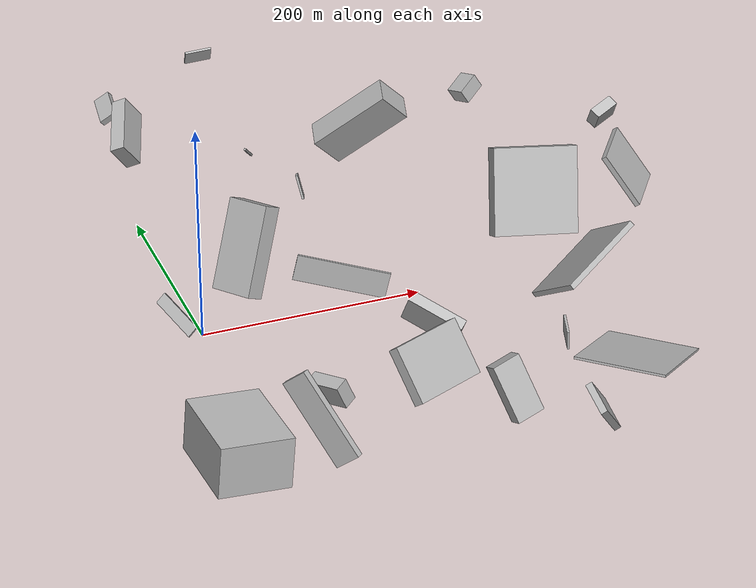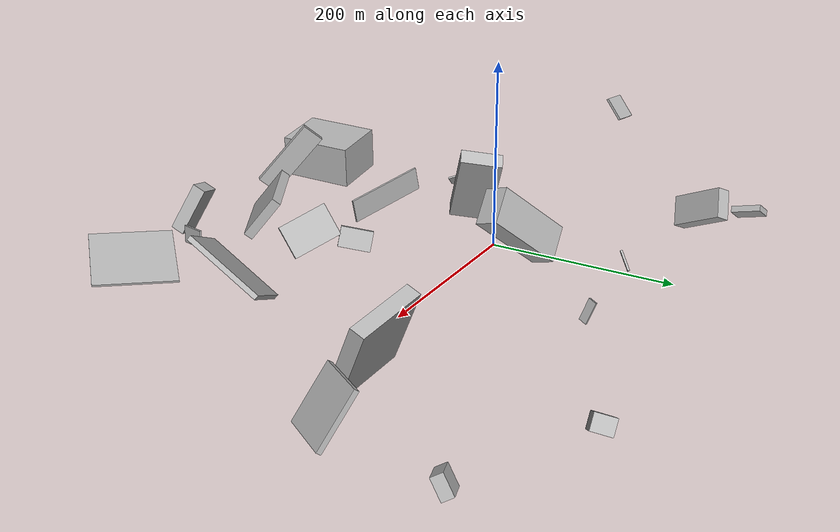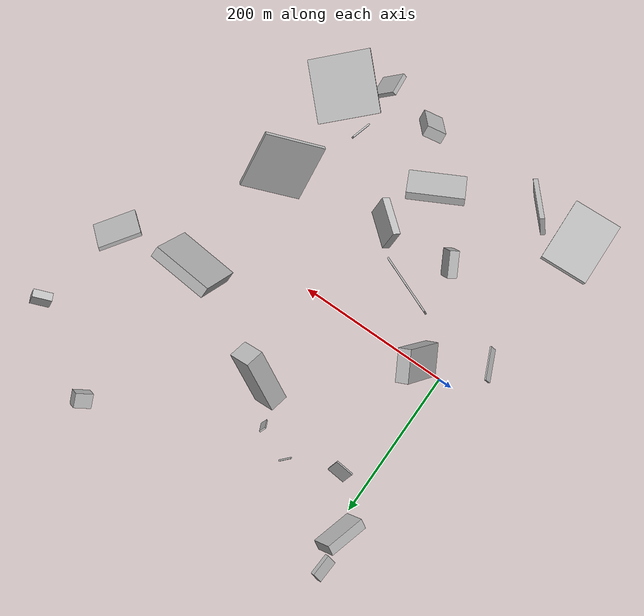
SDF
<sdf version="1.6">
 <world name="default">
  <scene>
   <sky><clouds><speed>12</speed></clouds></sky>
   <ambient>0.4 0.4 0.4 1</ambient>
   <background>0.7 0.7 0.7 1</background>
   <shadows>1</shadows>
  </scene>
  <gravity>0 0 -9.8066</gravity>
  <magnetic_field>6e-06 2.3e-05 -4.2e-05</magnetic_field>
  <physics default="0" name="default_physics" type="ode">
   <ode>
    <solver>
     <type>quick</type>
     <iters>10</iters>
     <sor>1.0</sor>
     <use_dynamic_moi_rescaling>0</use_dynamic_moi_rescaling>
    </solver>
    <constraints>
     <cfm>0</cfm>
     <erp>0.2</erp>
     <contact_max_correcting_vel>100</contact_max_correcting_vel>
     <contact_surface_layer>0.001</contact_surface_layer>
    </constraints>
   </ode>
   <max_step_size>0.004</max_step_size>
   <real_time_factor>1</real_time_factor>
   <real_time_update_rate>250</real_time_update_rate>
  </physics>
  <light name="sun" type="directional">
   <pose>0 0 10 0 0 0</pose>
   <diffuse>0.8 0.8 0.8 1</diffuse>
   <specular>0.2 0.2 0.2 1</specular>
   <attenuation>
    <range>1000</range>
    <constant>0.9</constant>
    <linear>0.01</linear>
    <quadratic>0.001</quadratic>
   </attenuation>
   <direction>-0.5 0.1 -0.9</direction>
  </light>
  <model name="building_1">
   <static>0</static>
   <pose>162.99593049644028 -124.27931186532278 48.80802444539094 -1.0984901950874413 0.40016499125165994 -0.6993017152681614</pose>
   <link name="link">
    <gravity>0</gravity>
    <pose>0 0 5.0 0 0 0</pose>
    <collision name="collision"><geometry><box><size>51 35 10</size></box></geometry></collision>
    <visual name="visual">
     <cast_shadows>0</cast_shadows>
     <geometry><box><size>51 35 10</size></box></geometry>
     <material>
      <script>
       <uri>model://HANNAS_wall/materials/scripts</uri>
       <uri>model://HANNAS_wall/materials/textures</uri>
       <name>vrc/HANNAS_wall</name>
      </script>
     </material>
    </visual>
   </link>
  </model>
  <model name="building_2">
   <static>0</static>
   <pose>104.00570971066661 187.01532598332935 64.12349217143289 -1.8146699430566238 0.8157747024063629 -2.5779243974820227</pose>
   <link name="link">
    <gravity>0</gravity>
    <pose>0 0 1.0 0 0 0</pose>
    <collision name="collision"><geometry><box><size>2 21 2</size></box></geometry></collision>
    <visual name="visual">
     <cast_shadows>0</cast_shadows>
     <geometry><box><size>2 21 2</size></box></geometry>
     <material>
      <script>
       <uri>model://HANNAS_wall/materials/scripts</uri>
       <uri>model://HANNAS_wall/materials/textures</uri>
       <name>vrc/HANNAS_wall</name>
      </script>
     </material>
    </visual>
   </link>
  </model>
  <model name="building_3">
   <static>0</static>
   <pose>67.36303448372925 -128.35348960699457 16.14363830699333 -2.808517901789816 -0.19683969026062162 -1.0601534378026678</pose>
   <link name="link">
    <gravity>0</gravity>
    <pose>0 0 11.0 0 0 0</pose>
    <collision name="collision"><geometry><box><size>35 13 22</size></box></geometry></collision>
    <visual name="visual">
     <cast_shadows>0</cast_shadows>
     <geometry><box><size>35 13 22</size></box></geometry>
     <material>
      <script>
       <uri>model://HANNAS_wall/materials/scripts</uri>
       <uri>model://HANNAS_wall/materials/textures</uri>
       <name>vrc/HANNAS_wall</name>
      </script>
     </material>
    </visual>
   </link>
  </model>
  <model name="building_4">
   <static>0</static>
   <pose>193.99350920317727 -260.26228744437356 34.32530488951527 -0.27017248792645393 0.434059592817933 1.650286607276768</pose>
   <link name="link">
    <gravity>0</gravity>
    <pose>0 0 25.5 0 0 0</pose>
    <collision name="collision"><geometry><box><size>14 25 51</size></box></geometry></collision>
    <visual name="visual">
     <cast_shadows>0</cast_shadows>
     <geometry><box><size>14 25 51</size></box></geometry>
     <material>
      <script>
       <uri>model://HANNAS_wall/materials/scripts</uri>
       <uri>model://HANNAS_wall/materials/textures</uri>
       <name>vrc/HANNAS_wall</name>
      </script>
     </material>
    </visual>
   </link>
  </model>
  <model name="building_5">
   <static>0</static>
   <pose>-8.338563206316696 218.14849788164423 98.22942748126907 2.6610625875440843 -0.4476545114571558 1.2379742506369613</pose>
   <link name="link">
    <gravity>0</gravity>
    <pose>0 0 14.5 0 0 0</pose>
    <collision name="collision"><geometry><box><size>55 14 29</size></box></geometry></collision>
    <visual name="visual">
     <cast_shadows>0</cast_shadows>
     <geometry><box><size>55 14 29</size></box></geometry>
     <material>
      <script>
       <uri>model://HANNAS_wall/materials/scripts</uri>
       <uri>model://HANNAS_wall/materials/textures</uri>
       <name>vrc/HANNAS_wall</name>
      </script>
     </material>
    </visual>
   </link>
  </model>
  <model name="building_6">
   <static>0</static>
   <pose>306.8128664939174 -73.02921990093536 48.179787738711504 -0.6483380074318336 -0.799599427244193 2.4636482451960697</pose>
   <link name="link">
    <gravity>0</gravity>
    <pose>0 0 40.0 0 0 0</pose>
    <collision name="collision"><geometry><box><size>5 80 80</size></box></geometry></collision>
    <visual name="visual">
     <cast_shadows>0</cast_shadows>
     <geometry><box><size>5 80 80</size></box></geometry>
     <material>
      <script>
       <uri>model://HANNAS_wall/materials/scripts</uri>
       <uri>model://HANNAS_wall/materials/textures</uri>
       <name>vrc/HANNAS_wall</name>
      </script>
     </material>
    </visual>
   </link>
  </model>
  <model name="building_7">
   <static>0</static>
   <pose>185.6385628330456 107.14346548154569 111.06078238954456 -1.147870944323106 -0.68353770401961 -0.5122813645487685</pose>
   <link name="link">
    <gravity>0</gravity>
    <pose>0 0 12.0 0 0 0</pose>
    <collision name="collision"><geometry><box><size>80 34 24</size></box></geometry></collision>
    <visual name="visual">
     <cast_shadows>0</cast_shadows>
     <geometry><box><size>80 34 24</size></box></geometry>
     <material>
      <script>
       <uri>model://HANNAS_wall/materials/scripts</uri>
       <uri>model://HANNAS_wall/materials/textures</uri>
       <name>vrc/HANNAS_wall</name>
      </script>
     </material>
    </visual>
   </link>
  </model>
  <model name="building_8">
   <static>0</static>
   <pose>333.42653288165377 61.75706204145057 44.568139040900206 0.2541038439367915 -1.1332465934704619 1.2516623318498625</pose>
   <link name="link">
    <gravity>0</gravity>
    <pose>0 0 7.5 0 0 0</pose>
    <collision name="collision"><geometry><box><size>80 80 15</size></box></geometry></collision>
    <visual name="visual">
     <cast_shadows>0</cast_shadows>
     <geometry><box><size>80 80 15</size></box></geometry>
     <material>
      <script>
       <uri>model://HANNAS_wall/materials/scripts</uri>
       <uri>model://HANNAS_wall/materials/textures</uri>
       <name>vrc/HANNAS_wall</name>
      </script>
     </material>
    </visual>
   </link>
  </model>
  <model name="building_9">
   <static>0</static>
   <pose>-35.903856080899615 -49.59284840066556 57.34418752032484 0.5518796849754295 -0.8433150744029565 -0.03763523875329404</pose>
   <link name="link">
    <gravity>0</gravity>
    <pose>0 0 1.0 0 0 0</pose>
    <collision name="collision"><geometry><box><size>11 44 2</size></box></geometry></collision>
    <visual name="visual">
     <cast_shadows>0</cast_shadows>
     <geometry><box><size>11 44 2</size></box></geometry>
     <material>
      <script>
       <uri>model://HANNAS_wall/materials/scripts</uri>
       <uri>model://HANNAS_wall/materials/textures</uri>
       <name>vrc/HANNAS_wall</name>
      </script>
     </material>
    </visual>
   </link>
  </model>
  <model name="building_10">
   <static>0</static>
   <pose>-12.434469813765284 267.6614812719538 85.78353969204831 0.9258811575640676 -0.2675568153668469 1.4886435769843336</pose>
   <link name="link">
    <gravity>0</gravity>
    <pose>0 0 8.0 0 0 0</pose>
    <collision name="collision"><geometry><box><size>29 6 16</size></box></geometry></collision>
    <visual name="visual">
     <cast_shadows>0</cast_shadows>
     <geometry><box><size>29 6 16</size></box></geometry>
     <material>
      <script>
       <uri>model://HANNAS_wall/materials/scripts</uri>
       <uri>model://HANNAS_wall/materials/textures</uri>
       <name>vrc/HANNAS_wall</name>
      </script>
     </material>
    </visual>
   </link>
  </model>
  <model name="building_11">
   <static>0</static>
   <pose>146.1152976312643 -205.85897138582456 36.81245785799935 0.07707619874986185 0.6601425614137517 2.094515929814166</pose>
   <link name="link">
    <gravity>0</gravity>
    <pose>0 0 25.0 0 0 0</pose>
    <collision name="collision"><geometry><box><size>10 72 50</size></box></geometry></collision>
    <visual name="visual">
     <cast_shadows>0</cast_shadows>
     <geometry><box><size>10 72 50</size></box></geometry>
     <material>
      <script>
       <uri>model://HANNAS_wall/materials/scripts</uri>
       <uri>model://HANNAS_wall/materials/textures</uri>
       <name>vrc/HANNAS_wall</name>
      </script>
     </material>
    </visual>
   </link>
  </model>
  <model name="building_12">
   <static>0</static>
   <pose>303.8937487297731 -230.28277401978175 51.533725984377874 3.088342541937766 0.24143634705019498 0.7557845171297246</pose>
   <link name="link">
    <gravity>0</gravity>
    <pose>0 0 1.0 0 0 0</pose>
    <collision name="collision"><geometry><box><size>80 80 2</size></box></geometry></collision>
    <visual name="visual">
     <cast_shadows>0</cast_shadows>
     <geometry><box><size>80 80 2</size></box></geometry>
     <material>
      <script>
       <uri>model://HANNAS_wall/materials/scripts</uri>
       <uri>model://HANNAS_wall/materials/textures</uri>
       <name>vrc/HANNAS_wall</name>
      </script>
     </material>
    </visual>
   </link>
  </model>
  <model name="building_13">
   <static>0</static>
   <pose>50.89738947310776 157.49242708929256 181.9964008827191 0.7086679709010248 -0.0897074270786901 -0.10773385817431663</pose>
   <link name="link">
    <gravity>0</gravity>
    <pose>0 0 11.0 0 0 0</pose>
    <collision name="collision"><geometry><box><size>23 2 22</size></box></geometry></collision>
    <visual name="visual">
     <cast_shadows>0</cast_shadows>
     <geometry><box><size>23 2 22</size></box></geometry>
     <material>
      <script>
       <uri>model://HANNAS_wall/materials/scripts</uri>
       <uri>model://HANNAS_wall/materials/textures</uri>
       <name>vrc/HANNAS_wall</name>
      </script>
     </material>
    </visual>
   </link>
  </model>
  <model name="building_14">
   <static>0</static>
   <pose>-45.85308264760212 -236.95244659308742 27.141741700722353 -0.03150611412564262 0.0965434481418755 0.042418555187374696</pose>
   <link name="link">
    <gravity>0</gravity>
    <pose>0 0 22.5 0 0 0</pose>
    <collision name="collision"><geometry><box><size>62 80 45</size></box></geometry></collision>
    <visual name="visual">
     <cast_shadows>0</cast_shadows>
     <geometry><box><size>62 80 45</size></box></geometry>
     <material>
      <script>
       <uri>model://HANNAS_wall/materials/scripts</uri>
       <uri>model://HANNAS_wall/materials/textures</uri>
       <name>vrc/HANNAS_wall</name>
      </script>
     </material>
    </visual>
   </link>
  </model>
  <model name="building_15">
   <static>0</static>
   <pose>467.530321481336 191.42833569505228 30.211971354709686 0.5147369202893463 -1.0285138052235385 -1.6643872885690096</pose>
   <link name="link">
    <gravity>0</gravity>
    <pose>0 0 5.5 0 0 0</pose>
    <collision name="collision"><geometry><box><size>20 25 11</size></box></geometry></collision>
    <visual name="visual">
     <cast_shadows>0</cast_shadows>
     <geometry><box><size>20 25 11</size></box></geometry>
     <material>
      <script>
       <uri>model://HANNAS_wall/materials/scripts</uri>
       <uri>model://HANNAS_wall/materials/textures</uri>
       <name>vrc/HANNAS_wall</name>
      </script>
     </material>
    </visual>
   </link>
  </model>
  <model name="building_16">
   <static>0</static>
   <pose>33.507197098456274 -5.590741777170337 84.35157151855364 2.84496964516565 -1.0805588715815186 0.7790976702584507</pose>
   <link name="link">
    <gravity>0</gravity>
    <pose>0 0 8.5 0 0 0</pose>
    <collision name="collision"><geometry><box><size>80 42 17</size></box></geometry></collision>
    <visual name="visual">
     <cast_shadows>0</cast_shadows>
     <geometry><box><size>80 42 17</size></box></geometry>
     <material>
      <script>
       <uri>model://HANNAS_wall/materials/scripts</uri>
       <uri>model://HANNAS_wall/materials/textures</uri>
       <name>vrc/HANNAS_wall</name>
      </script>
     </material>
    </visual>
   </link>
  </model>
  <model name="building_17">
   <static>0</static>
   <pose>449.8949270063468 95.14802345881161 43.75444515962039 1.6130646854996948 -0.6147144801880268 -0.6387436254615627</pose>
   <link name="link">
    <gravity>0</gravity>
    <pose>0 0 27.5 0 0 0</pose>
    <collision name="collision"><geometry><box><size>5 57 55</size></box></geometry></collision>
    <visual name="visual">
     <cast_shadows>0</cast_shadows>
     <geometry><box><size>5 57 55</size></box></geometry>
     <material>
      <script>
       <uri>model://HANNAS_wall/materials/scripts</uri>
       <uri>model://HANNAS_wall/materials/textures</uri>
       <name>vrc/HANNAS_wall</name>
      </script>
     </material>
    </visual>
   </link>
  </model>
  <model name="building_18">
   <static>0</static>
   <pose>343.5002004540001 263.6711741364055 38.97910979324797 0.4860897486714666 -1.026538135280508 3.1063325329474667</pose>
   <link name="link">
    <gravity>0</gravity>
    <pose>0 0 11.5 0 0 0</pose>
    <collision name="collision"><geometry><box><size>15 19 23</size></box></geometry></collision>
    <visual name="visual">
     <cast_shadows>0</cast_shadows>
     <geometry><box><size>15 19 23</size></box></geometry>
     <material>
      <script>
       <uri>model://HANNAS_wall/materials/scripts</uri>
       <uri>model://HANNAS_wall/materials/textures</uri>
       <name>vrc/HANNAS_wall</name>
      </script>
     </material>
    </visual>
   </link>
  </model>
  <model name="building_19">
   <static>0</static>
   <pose>100.00467806517219 -70.79163770716703 66.36804487644022 0.03932851888083846 -0.21722207852193973 2.7565476305184107</pose>
   <link name="link">
    <gravity>0</gravity>
    <pose>0 0 12.0 0 0 0</pose>
    <collision name="collision"><geometry><box><size>80 2 24</size></box></geometry></collision>
    <visual name="visual">
     <cast_shadows>0</cast_shadows>
     <geometry><box><size>80 2 24</size></box></geometry>
     <material>
      <script>
       <uri>model://HANNAS_wall/materials/scripts</uri>
       <uri>model://HANNAS_wall/materials/textures</uri>
       <name>vrc/HANNAS_wall</name>
      </script>
     </material>
    </visual>
   </link>
  </model>
  <model name="building_20">
   <static>0</static>
   <pose>261.32772084860824 -265.3821658628475 31.979168399745678 -2.483315852451593 0.8857432575279716 0.6191683846919188</pose>
   <link name="link">
    <gravity>0</gravity>
    <pose>0 0 3.0 0 0 0</pose>
    <collision name="collision"><geometry><box><size>38 30 6</size></box></geometry></collision>
    <visual name="visual">
     <cast_shadows>0</cast_shadows>
     <geometry><box><size>38 30 6</size></box></geometry>
     <material>
      <script>
       <uri>model://HANNAS_wall/materials/scripts</uri>
       <uri>model://HANNAS_wall/materials/textures</uri>
       <name>vrc/HANNAS_wall</name>
      </script>
     </material>
    </visual>
   </link>
  </model>
  <model name="building_21">
   <static>0</static>
   <pose>17.329794300387107 -236.36177220182753 52.62216861401558 0.11363018058552384 -0.8590065416760573 2.177302033166187</pose>
   <link name="link">
    <gravity>0</gravity>
    <pose>0 0 12.5 0 0 0</pose>
    <collision name="collision"><geometry><box><size>80 6 25</size></box></geometry></collision>
    <visual name="visual">
     <cast_shadows>0</cast_shadows>
     <geometry><box><size>80 6 25</size></box></geometry>
     <material>
      <script>
       <uri>model://HANNAS_wall/materials/scripts</uri>
       <uri>model://HANNAS_wall/materials/textures</uri>
       <name>vrc/HANNAS_wall</name>
      </script>
     </material>
    </visual>
   </link>
  </model>
  <model name="building_22">
   <static>0</static>
   <pose>258.8762707917181 -183.88769059546235 62.85272791721776 2.5180213576037973 1.5008871625751417 0.6575509252146671</pose>
   <link name="link">
    <gravity>0</gravity>
    <pose>0 0 12.5 0 0 0</pose>
    <collision name="collision"><geometry><box><size>17 2 25</size></box></geometry></collision>
    <visual name="visual">
     <cast_shadows>0</cast_shadows>
     <geometry><box><size>17 2 25</size></box></geometry>
     <material>
      <script>
       <uri>model://HANNAS_wall/materials/scripts</uri>
       <uri>model://HANNAS_wall/materials/textures</uri>
       <name>vrc/HANNAS_wall</name>
      </script>
     </material>
    </visual>
   </link>
  </model>
  <model name="building_23">
   <static>0</static>
   <pose>147.23925256281424 174.48427268906295 38.17986220440618 -2.87615553636623 -0.26010747558277186 -1.946746193318873</pose>
   <link name="link">
    <gravity>0</gravity>
    <pose>0 0 11.5 0 0 0</pose>
    <collision name="collision"><geometry><box><size>9 2 23</size></box></geometry></collision>
    <visual name="visual">
     <cast_shadows>0</cast_shadows>
     <geometry><box><size>9 2 23</size></box></geometry>
     <material>
      <script>
       <uri>model://HANNAS_wall/materials/scripts</uri>
       <uri>model://HANNAS_wall/materials/textures</uri>
       <name>vrc/HANNAS_wall</name>
      </script>
     </material>
    </visual>
   </link>
  </model>
 </world>
</sdf>
